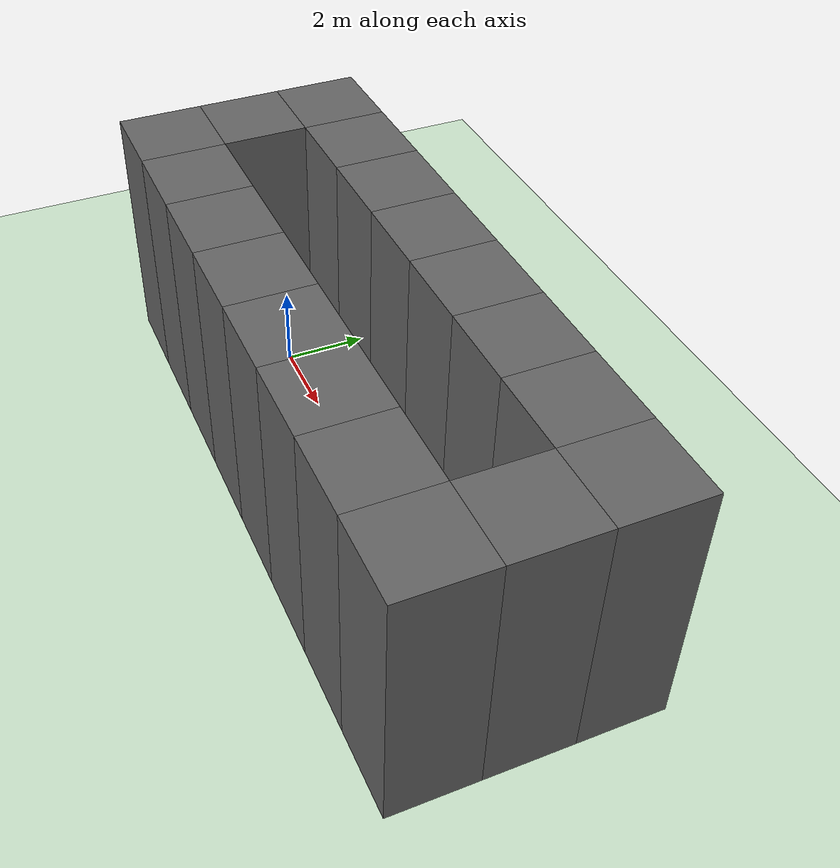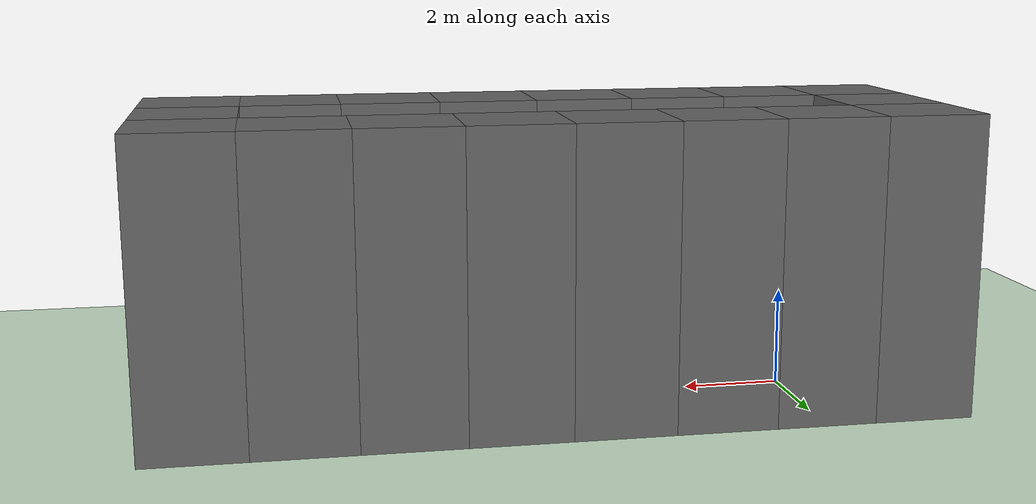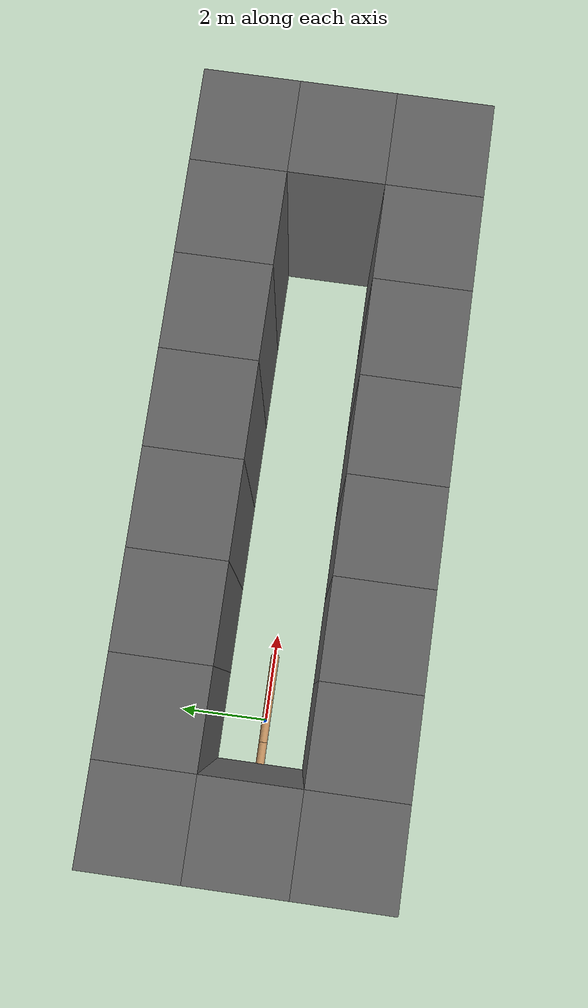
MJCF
<mujoco model="swimmer">
  <compiler angle="degree" coordinate="local" inertiafromgeom="true"/>
  <option collision="predefined" density="4000" integrator="RK4" timestep="0.01" viscosity="0.1"/>
  <default>
    <geom conaffinity="1" condim="1" contype="1" material="geom" rgba="0.8 0.6 .4 1"/>
    <joint armature='0.1'  />
  </default>
  <asset>
    <texture builtin="gradient" height="100" rgb1="1 1 1" rgb2="0 0 0" type="skybox" width="100"/>
    <texture builtin="flat" height="1278" mark="cross" markrgb="1 1 1" name="texgeom" random="0.01" rgb1="0.8 0.6 0.4" rgb2="0.8 0.6 0.4" type="cube" width="127"/>
    <texture builtin="checker" height="100" name="texplane" rgb1="0 0 0" rgb2="0.8 0.8 0.8" type="2d" width="100"/>
    <material name="MatPlane" reflectance="0.5" shininess="1" specular="1" texrepeat="30 30" texture="texplane"/>
    <material name="geom" texture="texgeom" texuniform="true"/>
  </asset>
  <worldbody>
    <light cutoff="100" diffuse="1 1 1" dir="-0 0 -1.3" directional="true" exponent="1" pos="0 0 1.3" specular=".1 .1 .1"/>
    <geom conaffinity="1" condim="3" material="MatPlane" name="floor" pos="0 0 -0.1" rgba="0.8 0.9 0.8 1" size="40 40 0.1" type="plane"/>
    <!--  ================= SWIMMER ================= /-->
    <body name="torso" pos="0 0 0">
      <geom density="1000" fromto="1.5 0 0 0.5 0 0" size="0.1" type="capsule"/>
      <joint axis="1 0 0" name="slider1" pos="0 0 0" type="slide"/>
      <joint axis="0 1 0" name="slider2" pos="0 0 0" type="slide"/>
      <joint axis="0 0 1" name="rot" pos="0 0 0" type="hinge"/>
      <body name="mid" pos="0.5 0 0">
        <geom density="1000" fromto="0 0 0 -1 0 0" size="0.1" type="capsule"/>
        <joint axis="0 0 1" limited="true" name="rot2" pos="0 0 0" range="-100 100" type="hinge"/>
        <body name="back" pos="-1 0 0">
          <geom density="1000" fromto="0 0 0 -1 0 0" size="0.1" type="capsule"/>
          <joint axis="0 0 1" limited="true" name="rot3" pos="0 0 0" range="-100 100" type="hinge"/>
        </body>
      </body>
    </body>
    <geom conaffinity="1" contype="1" material="" name="block_0_0" pos="-2.000000 -2.000000 3.000000" rgba="0.4 0.4 0.4 1" size="1.000000 1.000000 3.000000" type="box"/>
    <geom conaffinity="1" contype="1" material="" name="block_0_1" pos="0.000000 -2.000000 3.000000" rgba="0.4 0.4 0.4 1" size="1.000000 1.000000 3.000000" type="box"/>
    <geom conaffinity="1" contype="1" material="" name="block_0_2" pos="2.000000 -2.000000 3.000000" rgba="0.4 0.4 0.4 1" size="1.000000 1.000000 3.000000" type="box"/>
    <geom conaffinity="1" contype="1" material="" name="block_0_3" pos="4.000000 -2.000000 3.000000" rgba="0.4 0.4 0.4 1" size="1.000000 1.000000 3.000000" type="box"/>
    <geom conaffinity="1" contype="1" material="" name="block_0_4" pos="6.000000 -2.000000 3.000000" rgba="0.4 0.4 0.4 1" size="1.000000 1.000000 3.000000" type="box"/>
    <geom conaffinity="1" contype="1" material="" name="block_0_5" pos="8.000000 -2.000000 3.000000" rgba="0.4 0.4 0.4 1" size="1.000000 1.000000 3.000000" type="box"/>
    <geom conaffinity="1" contype="1" material="" name="block_0_6" pos="10.000000 -2.000000 3.000000" rgba="0.4 0.4 0.4 1" size="1.000000 1.000000 3.000000" type="box"/>
    <geom conaffinity="1" contype="1" material="" name="block_0_7" pos="12.000000 -2.000000 3.000000" rgba="0.4 0.4 0.4 1" size="1.000000 1.000000 3.000000" type="box"/>
    <geom conaffinity="1" contype="1" material="" name="block_1_0" pos="-2.000000 0.000000 3.000000" rgba="0.4 0.4 0.4 1" size="1.000000 1.000000 3.000000" type="box"/>
    <geom conaffinity="1" contype="1" material="" name="block_1_7" pos="12.000000 0.000000 3.000000" rgba="0.4 0.4 0.4 1" size="1.000000 1.000000 3.000000" type="box"/>
    <geom conaffinity="1" contype="1" material="" name="block_2_0" pos="-2.000000 2.000000 3.000000" rgba="0.4 0.4 0.4 1" size="1.000000 1.000000 3.000000" type="box"/>
    <geom conaffinity="1" contype="1" material="" name="block_2_1" pos="0.000000 2.000000 3.000000" rgba="0.4 0.4 0.4 1" size="1.000000 1.000000 3.000000" type="box"/>
    <geom conaffinity="1" contype="1" material="" name="block_2_2" pos="2.000000 2.000000 3.000000" rgba="0.4 0.4 0.4 1" size="1.000000 1.000000 3.000000" type="box"/>
    <geom conaffinity="1" contype="1" material="" name="block_2_3" pos="4.000000 2.000000 3.000000" rgba="0.4 0.4 0.4 1" size="1.000000 1.000000 3.000000" type="box"/>
    <geom conaffinity="1" contype="1" material="" name="block_2_4" pos="6.000000 2.000000 3.000000" rgba="0.4 0.4 0.4 1" size="1.000000 1.000000 3.000000" type="box"/>
    <geom conaffinity="1" contype="1" material="" name="block_2_5" pos="8.000000 2.000000 3.000000" rgba="0.4 0.4 0.4 1" size="1.000000 1.000000 3.000000" type="box"/>
    <geom conaffinity="1" contype="1" material="" name="block_2_6" pos="10.000000 2.000000 3.000000" rgba="0.4 0.4 0.4 1" size="1.000000 1.000000 3.000000" type="box"/>
    <geom conaffinity="1" contype="1" material="" name="block_2_7" pos="12.000000 2.000000 3.000000" rgba="0.4 0.4 0.4 1" size="1.000000 1.000000 3.000000" type="box"/>
  </worldbody>
  <actuator>
    <motor ctrllimited="true" ctrlrange="-1 1" gear="150.0" joint="rot2"/>
    <motor ctrllimited="true" ctrlrange="-1 1" gear="150.0" joint="rot3"/>
  </actuator>
</mujoco>
